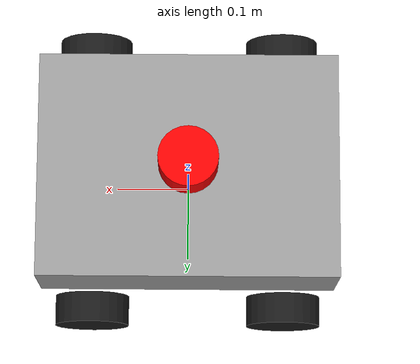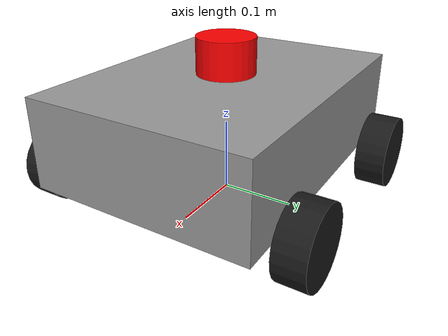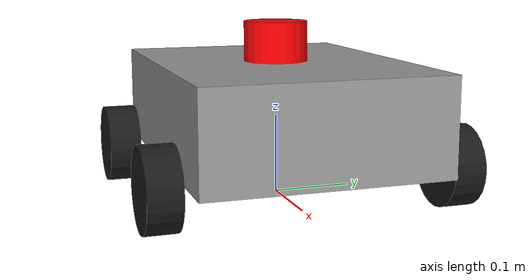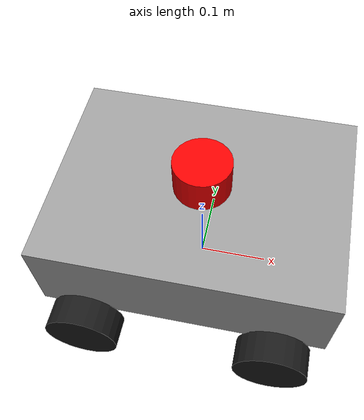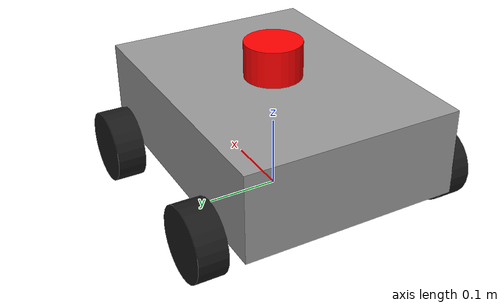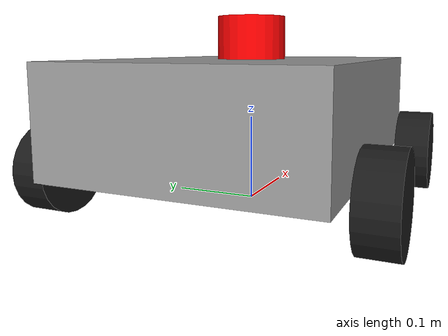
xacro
<?xml version="1.0"?>
<robot name="diffbot" xmlns:xacro="http://www.ros.org/wiki/xacro">

  <!-- ===================== Properties ===================== -->
  <xacro:property name="base_length" value="0.40"/>
  <xacro:property name="base_width"  value="0.30"/>
  <xacro:property name="base_height" value="0.12"/>
  <xacro:property name="base_mass"   value="5.0"/>

  <xacro:property name="wheel_radius" value="0.05"/>
  <xacro:property name="wheel_width"  value="0.04"/>
  <xacro:property name="wheel_mass"   value="0.5"/>
  <xacro:property name="wheel_separation" value="${base_width + wheel_width + 0.02}"/>
  <xacro:property name="wheel_offset_x" value="-0.05"/>

  <!-- Wheel locations relative to base_link -->
<xacro:property name="wheel_front_x" value="0.13"/>
<xacro:property name="wheel_rear_x" value="-0.13"/>

  <xacro:property name="lidar_radius" value="0.04"/>
  <xacro:property name="lidar_height" value="0.05"/>
  <xacro:property name="lidar_mass"   value="0.15"/>

  <!-- ===================== Inertia macros ===================== -->
  <xacro:macro name="box_inertia" params="m w h d">
    <inertial>
      <mass value="${m}"/>
      <inertia ixx="${m/12.0*(h*h+d*d)}" ixy="0" ixz="0"
               iyy="${m/12.0*(w*w+d*d)}" iyz="0"
               izz="${m/12.0*(w*w+h*h)}"/>
    </inertial>
  </xacro:macro>

  <xacro:macro name="cylinder_inertia" params="m r h">
    <inertial>
      <mass value="${m}"/>
      <inertia ixx="${m*(3*r*r+h*h)/12}" ixy="0" ixz="0"
               iyy="${m*(3*r*r+h*h)/12}" iyz="0"
               izz="${m*r*r/2}"/>
    </inertial>
  </xacro:macro>

  <xacro:macro name="sphere_inertia" params="m r">
    <inertial>
      <mass value="${m}"/>
      <inertia ixx="${2*m*r*r/5}" ixy="0" ixz="0"
               iyy="${2*m*r*r/5}" iyz="0"
               izz="${2*m*r*r/5}"/>
    </inertial>
  </xacro:macro>

  <!-- ===================== base_footprint / base_link ===================== -->
  <link name="base_footprint"/>

  <joint name="base_joint" type="fixed">
    <parent link="base_footprint"/>
    <child link="base_link"/>
    <origin xyz="0 0 ${wheel_radius}" rpy="0 0 0"/>
  </joint>

  <link name="base_link">
    <xacro:box_inertia m="${base_mass}" w="${base_length}" h="${base_width}" d="${base_height}"/>
    <visual>
      <origin xyz="0 0 ${base_height/2}" rpy="0 0 0"/>
      <geometry><box size="${base_length} ${base_width} ${base_height}"/></geometry>
      <material name="grey"><color rgba="0.6 0.6 0.6 1"/></material>
    </visual>
    <collision>
      <origin xyz="0 0 ${base_height/2}" rpy="0 0 0"/>
      <geometry><box size="${base_length} ${base_width} ${base_height}"/></geometry>
    </collision>
  </link>

 <!-- ===================== Four Drive Wheels ===================== -->
<xacro:macro name="wheel" params="prefix x_pos y_pos">
  <link name="${prefix}_wheel">
    <xacro:cylinder_inertia m="${wheel_mass}" r="${wheel_radius}" h="${wheel_width}"/>

    <visual>
      <origin xyz="0 0 0" rpy="${pi/2} 0 0"/>
      <geometry>
        <cylinder radius="${wheel_radius}" length="${wheel_width}"/>
      </geometry>
      <material name="black">
        <color rgba="0.1 0.1 0.1 1"/>
      </material>
    </visual>

    <collision>
      <origin xyz="0 0 0" rpy="${pi/2} 0 0"/>
      <geometry>
        <cylinder radius="${wheel_radius}" length="${wheel_width}"/>
      </geometry>
    </collision>
  </link>

  <joint name="${prefix}_wheel_joint" type="continuous">
    <parent link="base_link"/>
    <child link="${prefix}_wheel"/>
    <origin xyz="${x_pos} ${y_pos} 0" rpy="0 0 0"/>
    <axis xyz="0 1 0"/>
  </joint>
</xacro:macro>

<!-- Left-side wheels: positive y -->
<xacro:wheel prefix="left_front"
             x_pos="${wheel_front_x}"
             y_pos="${wheel_separation/2}"/>

<xacro:wheel prefix="left_rear"
             x_pos="${wheel_rear_x}"
             y_pos="${wheel_separation/2}"/>

<!-- Right-side wheels: negative y -->
<xacro:wheel prefix="right_front"
             x_pos="${wheel_front_x}"
             y_pos="${-wheel_separation/2}"/>

<xacro:wheel prefix="right_rear"
             x_pos="${wheel_rear_x}"
             y_pos="${-wheel_separation/2}"/>

  <!-- ===================== LIDAR ===================== -->
  <link name="lidar_link">
    <xacro:cylinder_inertia m="${lidar_mass}" r="${lidar_radius}" h="${lidar_height}"/>
    <visual>
      <geometry><cylinder radius="${lidar_radius}" length="${lidar_height}"/></geometry>
      <material name="red"><color rgba="1 0 0 1"/></material>
    </visual>
    <collision>
      <geometry><cylinder radius="${lidar_radius}" length="${lidar_height}"/></geometry>
    </collision>
  </link>

  <joint name="lidar_joint" type="fixed">
    <parent link="base_link"/>
    <child link="lidar_link"/>
    <origin xyz="0 0 ${base_height + lidar_height/2}" rpy="0 0 0"/>
  </joint>

  <!-- Gazebo-specific plugins (diff-drive + lidar sensor) -->
  <xacro:include filename="$(find diffbot_description)/urdf/diffbot.gazebo.xacro"/>

</robot>
